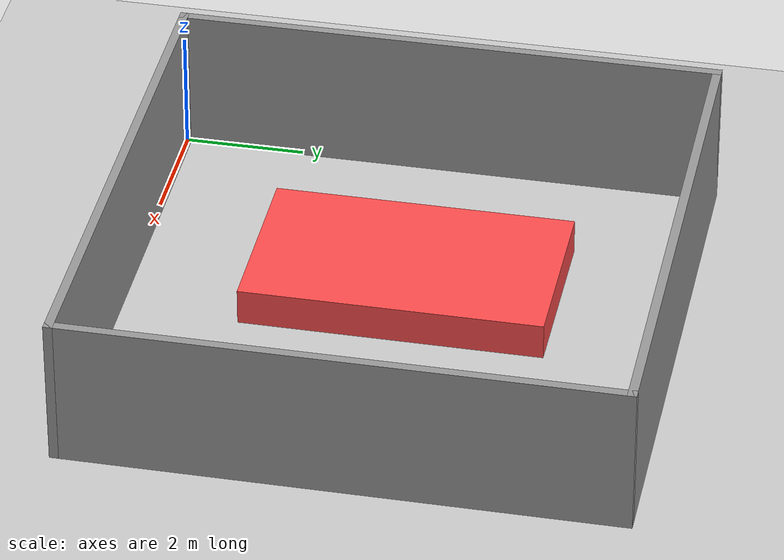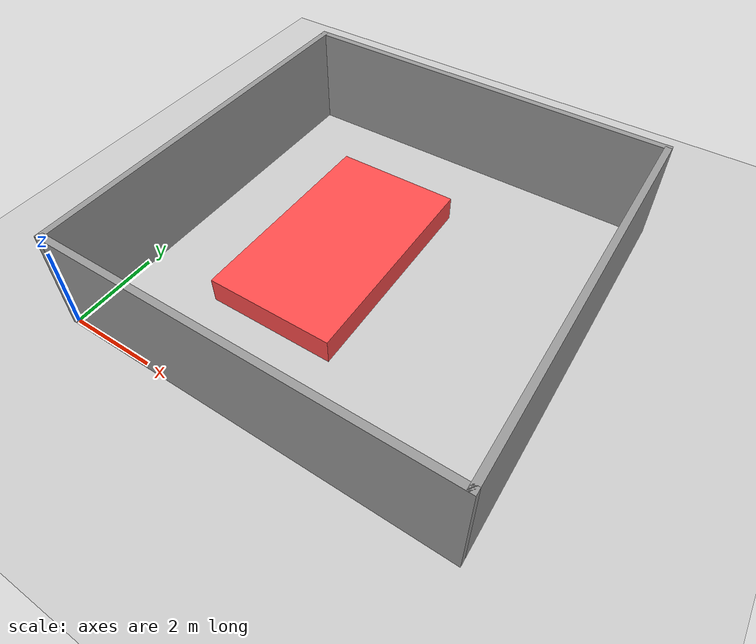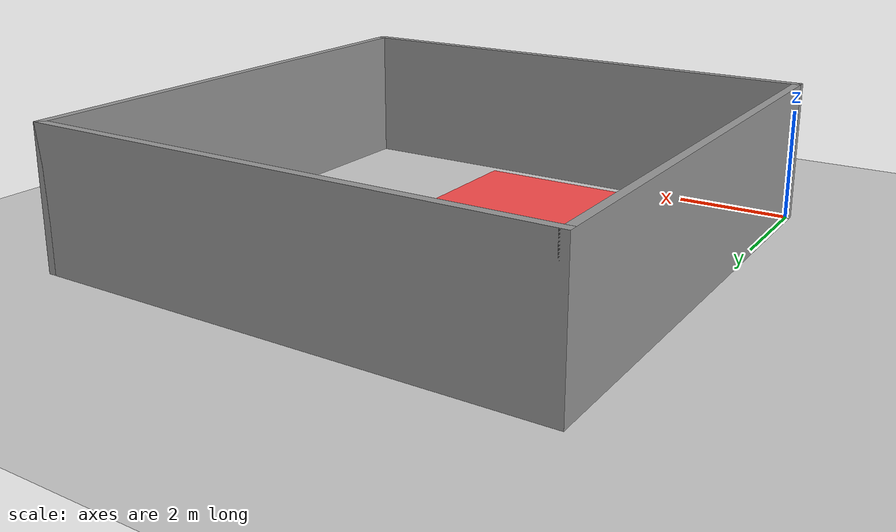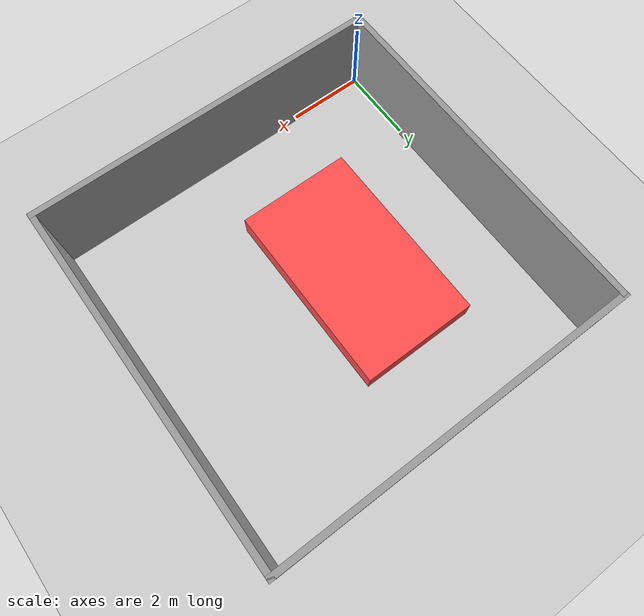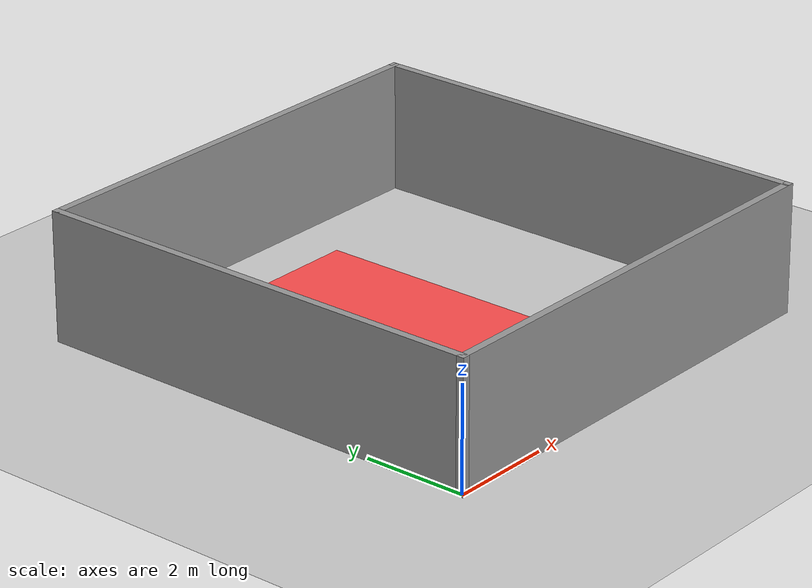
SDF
<sdf version="1.7">
 <world name="default">
  <plugin name="gazebo_ros_state" filename="libgazebo_ros_state.so">
   <ros>
    <namespace>/demo</namespace>
    <argument>model_states:=model_states_demo</argument>
    <argument>link_states:=link_states_demo</argument>
   </ros>
   <update_rate>1.0</update_rate>
  </plugin>
  <light name="sun" type="directional">
   <pose>0 0 10 0 -0 0</pose>
   <diffuse>0.8 0.8 0.8 1</diffuse>
   <specular>0.2 0.2 0.2 1</specular>
   <attenuation>
    <range>1000</range>
    <constant>0.9</constant>
    <linear>0.01</linear>
    <quadratic>0.001</quadratic>
   </attenuation>
   <direction>-0.5 0.1 -0.9</direction>
   <spot><inner_angle>0</inner_angle><outer_angle>0</outer_angle><falloff>0</falloff></spot>
  </light>
  <model name="ground_plane">
   <static>1</static>
   <link name="link">
    <collision name="collision">
     <geometry><plane><normal>0 0 1</normal><size>100 100</size></plane></geometry>
     <surface><friction><ode><mu>100</mu><mu2>50</mu2></ode></friction></surface>
    </collision>
    <visual name="visual">
     <cast_shadows>0</cast_shadows>
     <geometry><plane><normal>0 0 1</normal><size>100 100</size></plane></geometry>
     <material>
      <script><uri>file://media/materials/scripts/gazebo.material</uri><name>Gazebo/Grey</name></script>
     </material>
    </visual>
   </link>
  </model>
  <gravity>0 0 -9.8</gravity>
  <magnetic_field>6e-06 2.3e-05 -4.2e-05</magnetic_field>
  <atmosphere type="adiabatic"/>
  <physics type="ode">
   <max_step_size>0.001</max_step_size>
   <real_time_factor>1</real_time_factor>
   <real_time_update_rate>1000</real_time_update_rate>
  </physics>
  <scene><ambient>0.4 0.4 0.4 1</ambient><background>0.7 0.7 0.7 1</background><shadows>1</shadows></scene>
  <audio><device>default</device></audio>
  <spherical_coordinates>
   <surface_model>EARTH_WGS84</surface_model>
   <latitude_deg>0</latitude_deg>
   <longitude_deg>0</longitude_deg>
   <elevation>0</elevation>
   <heading_deg>0</heading_deg>
  </spherical_coordinates>
  <model name="walls">
   <pose>4.5 4.5 0 0 -0 0</pose>
   <link name="Wall_6">
    <collision name="Wall_6_Collision">
     <geometry><box><size>9.15 0.15 2.5</size></box></geometry>
     <pose>0 0 1.25 0 -0 0</pose>
    </collision>
    <visual name="Wall_6_Visual">
     <pose>0 0 1.25 0 -0 0</pose>
     <geometry><box><size>9.15 0.15 2.5</size></box></geometry>
     <material>
      <script><uri>file://media/materials/scripts/gazebo.material</uri><name>Gazebo/Grey</name></script>
      <ambient>1 1 1 1</ambient>
     </material>
     <meta><layer>0</layer></meta>
    </visual>
    <pose>-4.5 -0 0 0 -0 1.5708</pose>
   </link>
   <link name="Wall_7">
    <collision name="Wall_7_Collision">
     <geometry><box><size>9.15 0.15 2.5</size></box></geometry>
     <pose>0 0 1.25 0 -0 0</pose>
    </collision>
    <visual name="Wall_7_Visual">
     <pose>0 0 1.25 0 -0 0</pose>
     <geometry><box><size>9.15 0.15 2.5</size></box></geometry>
     <material>
      <script><uri>file://media/materials/scripts/gazebo.material</uri><name>Gazebo/Grey</name></script>
      <ambient>1 1 1 1</ambient>
     </material>
     <meta><layer>0</layer></meta>
    </visual>
    <pose>-0 4.5 0 0 -0 0</pose>
   </link>
   <link name="Wall_8">
    <collision name="Wall_8_Collision">
     <geometry><box><size>9.15 0.15 2.5</size></box></geometry>
     <pose>0 0 1.25 0 -0 0</pose>
    </collision>
    <visual name="Wall_8_Visual">
     <pose>0 0 1.25 0 -0 0</pose>
     <geometry><box><size>9.15 0.15 2.5</size></box></geometry>
     <material>
      <script><uri>file://media/materials/scripts/gazebo.material</uri><name>Gazebo/Grey</name></script>
      <ambient>1 1 1 1</ambient>
     </material>
     <meta><layer>0</layer></meta>
    </visual>
    <pose>4.5 -0 0 0 -0 -1.5708</pose>
   </link>
   <link name="Wall_9">
    <collision name="Wall_9_Collision">
     <geometry><box><size>9.15 0.15 2.5</size></box></geometry>
     <pose>0 0 1.25 0 -0 0</pose>
    </collision>
    <visual name="Wall_9_Visual">
     <pose>0 0 1.25 0 -0 0</pose>
     <geometry><box><size>9.15 0.15 2.5</size></box></geometry>
     <material>
      <script><uri>file://media/materials/scripts/gazebo.material</uri><name>Gazebo/Grey</name></script>
      <ambient>1 1 1 1</ambient>
     </material>
     <meta><layer>0</layer></meta>
    </visual>
    <pose>-0 -4.5 0 0 -0 3.14159</pose>
   </link>
   <static>1</static>
  </model>
  <model name="obstacle">
   <link name="link">
    <inertial>
     <mass>1</mass>
     <inertia>
      <ixx>0.166667</ixx>
      <ixy>0</ixy>
      <ixz>0</ixz>
      <iyy>0.166667</iyy>
      <iyz>0</iyz>
      <izz>0.166667</izz>
     </inertia>
     <pose>0.04 0 0 0 -0 0</pose>
    </inertial>
    <visual name="visual">
     <geometry><box><size>3 5 1</size></box></geometry>
     <material>
      <script><name>Gazebo/Grey</name><uri>file://media/materials/scripts/gazebo.material</uri></script>
      <shader type="pixel"><normal_map>__default__</normal_map></shader>
      <ambient>1 0.3 0.3 1</ambient>
      <diffuse>0.7 0.7 0.7 1</diffuse>
      <specular>0.01 0.01 0.01 1</specular>
      <emissive>0 0 0 1</emissive>
     </material>
    </visual>
    <collision name="collision">
     <geometry><box><size>1 1 0.1</size></box></geometry>
     <surface>
      <friction>
       <ode><mu>1</mu><mu2>1</mu2><fdir1>0 0 0</fdir1><slip1>0</slip1><slip2>0</slip2></ode>
       <torsional>
        <coefficient>1</coefficient>
        <patch_radius>0</patch_radius>
        <surface_radius>0</surface_radius>
        <use_patch_radius>1</use_patch_radius>
        <ode><slip>0</slip></ode>
       </torsional>
      </friction>
      <bounce><restitution_coefficient>0</restitution_coefficient><threshold>1e+06</threshold></bounce>
      <contact>
       <collide_without_contact>0</collide_without_contact>
       <collide_without_contact_bitmask>1</collide_without_contact_bitmask>
       <collide_bitmask>1</collide_bitmask>
       <ode>
        <soft_cfm>0</soft_cfm>
        <soft_erp>0.2</soft_erp>
        <kp>1e+13</kp>
        <kd>1</kd>
        <max_vel>0.01</max_vel>
        <min_depth>0</min_depth>
       </ode>
       <bullet>
        <split_impulse>1</split_impulse>
        <split_impulse_penetration_threshold>-0.01</split_impulse_penetration_threshold>
        <soft_cfm>0</soft_cfm>
        <soft_erp>0.2</soft_erp>
        <kp>1e+13</kp>
        <kd>1</kd>
       </bullet>
      </contact>
     </surface>
    </collision>
   </link>
   <static>0</static>
   <pose>3.49993 4.50005 0.1 0 0 -2.6e-05</pose>
  </model>
 </world>
</sdf>
